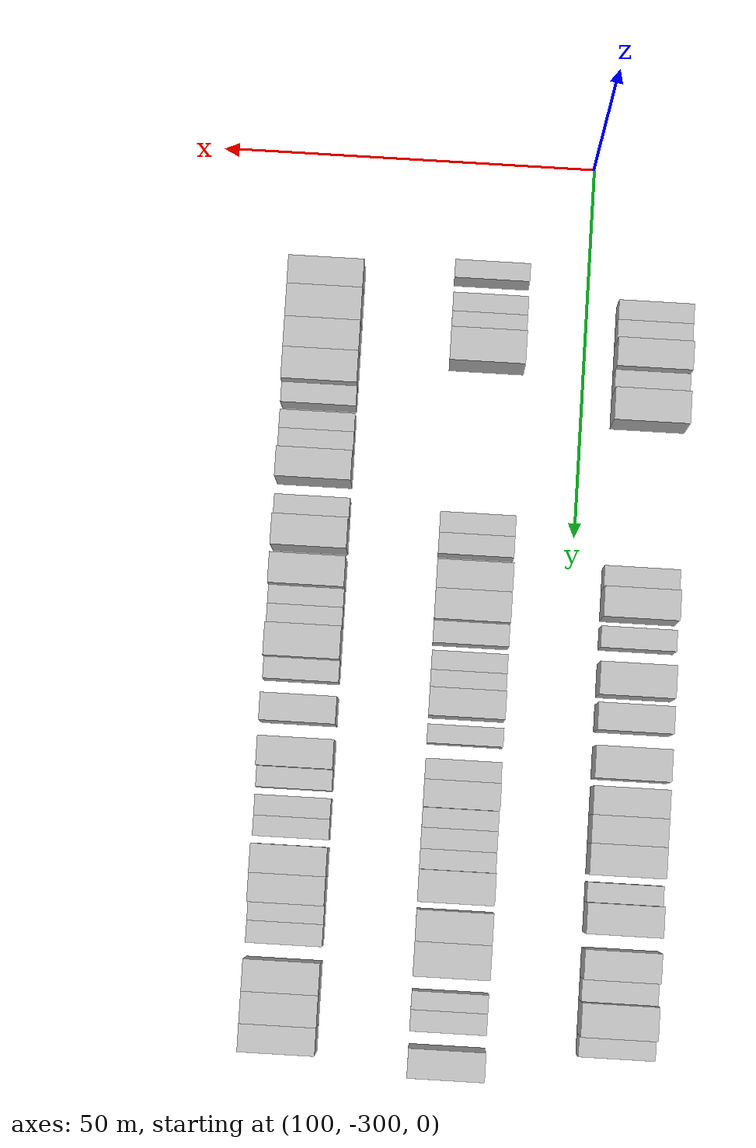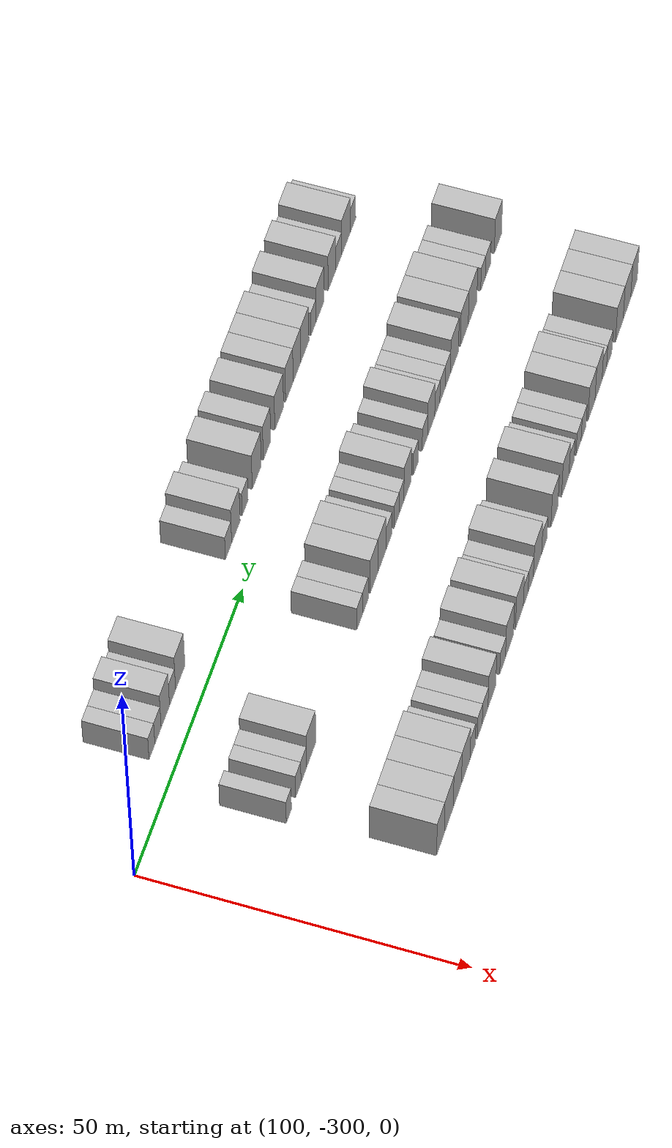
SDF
<sdf version="1.6">
 <world name="default">
  <model name="building_610">
   <static>1</static>
   <pose>91.0000 -280.1067 0 0.000000 0.000000 0.000000</pose>
   <link name="link">
    <pose>0 0 3.00 0 0 0</pose>
    <collision name="collision"><geometry><box><size>10.0000 2.6508 6.0000</size></box></geometry></collision>
    <visual name="visual">
     <cast_shadows>0</cast_shadows>
     <geometry><box><size>10.0000 2.6508 6.0000</size></box></geometry>
     <material>
      <script>
       <uri>model://HANNAS_wall/materials/scripts</uri>
       <uri>model://HANNAS_wall/materials/textures</uri>
       <name>vrc/HANNAS_wall</name>
      </script>
     </material>
    </visual>
   </link>
  </model>
  <model name="building_611">
   <static>1</static>
   <pose>91.0000 -277.3456 0 0.000000 0.000000 0.000000</pose>
   <link name="link">
    <pose>0 0 3.00 0 0 0</pose>
    <collision name="collision"><geometry><box><size>10.0000 2.8716 6.0000</size></box></geometry></collision>
    <visual name="visual">
     <cast_shadows>0</cast_shadows>
     <geometry><box><size>10.0000 2.8716 6.0000</size></box></geometry>
     <material>
      <script>
       <uri>model://HANNAS_wall/materials/scripts</uri>
       <uri>model://HANNAS_wall/materials/textures</uri>
       <name>vrc/HANNAS_wall</name>
      </script>
     </material>
    </visual>
   </link>
  </model>
  <model name="building_612">
   <static>1</static>
   <pose>91.0000 -273.9867 0 0.000000 0.000000 0.000000</pose>
   <link name="link">
    <pose>0 0 4.50 0 0 0</pose>
    <collision name="collision"><geometry><box><size>10.0000 3.8462 9.0000</size></box></geometry></collision>
    <visual name="visual">
     <cast_shadows>0</cast_shadows>
     <geometry><box><size>10.0000 3.8462 9.0000</size></box></geometry>
     <material>
      <script>
       <uri>model://HANNAS_wall/materials/scripts</uri>
       <uri>model://HANNAS_wall/materials/textures</uri>
       <name>vrc/HANNAS_wall</name>
      </script>
     </material>
    </visual>
   </link>
  </model>
  <model name="building_613">
   <static>1</static>
   <pose>91.0000 -270.6622 0 0.000000 0.000000 0.000000</pose>
   <link name="link">
    <pose>0 0 3.00 0 0 0</pose>
    <collision name="collision"><geometry><box><size>10.0000 2.8026 6.0000</size></box></geometry></collision>
    <visual name="visual">
     <cast_shadows>0</cast_shadows>
     <geometry><box><size>10.0000 2.8026 6.0000</size></box></geometry>
     <material>
      <script>
       <uri>model://HANNAS_wall/materials/scripts</uri>
       <uri>model://HANNAS_wall/materials/textures</uri>
       <name>vrc/HANNAS_wall</name>
      </script>
     </material>
    </visual>
   </link>
  </model>
  <model name="building_614">
   <static>1</static>
   <pose>91.0000 -267.1015 0 0.000000 0.000000 0.000000</pose>
   <link name="link">
    <pose>0 0 4.50 0 0 0</pose>
    <collision name="collision"><geometry><box><size>10.0000 4.3189 9.0000</size></box></geometry></collision>
    <visual name="visual">
     <cast_shadows>0</cast_shadows>
     <geometry><box><size>10.0000 4.3189 9.0000</size></box></geometry>
     <material>
      <script>
       <uri>model://HANNAS_wall/materials/scripts</uri>
       <uri>model://HANNAS_wall/materials/textures</uri>
       <name>vrc/HANNAS_wall</name>
      </script>
     </material>
    </visual>
   </link>
  </model>
  <model name="building_615">
   <static>1</static>
   <pose>91.0000 -244.4918 0 0.000000 0.000000 0.000000</pose>
   <link name="link">
    <pose>0 0 3.00 0 0 0</pose>
    <collision name="collision"><geometry><box><size>10.0000 2.9668 6.0000</size></box></geometry></collision>
    <visual name="visual">
     <cast_shadows>0</cast_shadows>
     <geometry><box><size>10.0000 2.9668 6.0000</size></box></geometry>
     <material>
      <script>
       <uri>model://HANNAS_wall/materials/scripts</uri>
       <uri>model://HANNAS_wall/materials/textures</uri>
       <name>vrc/HANNAS_wall</name>
      </script>
     </material>
    </visual>
   </link>
  </model>
  <model name="building_616">
   <static>1</static>
   <pose>91.0000 -240.9990 0 0.000000 0.000000 0.000000</pose>
   <link name="link">
    <pose>0 0 4.50 0 0 0</pose>
    <collision name="collision"><geometry><box><size>10.0000 4.0188 9.0000</size></box></geometry></collision>
    <visual name="visual">
     <cast_shadows>0</cast_shadows>
     <geometry><box><size>10.0000 4.0188 9.0000</size></box></geometry>
     <material>
      <script>
       <uri>model://HANNAS_wall/materials/scripts</uri>
       <uri>model://HANNAS_wall/materials/textures</uri>
       <name>vrc/HANNAS_wall</name>
      </script>
     </material>
    </visual>
   </link>
  </model>
  <model name="building_617">
   <static>1</static>
   <pose>91.0000 -236.5692 0 0.000000 0.000000 0.000000</pose>
   <link name="link">
    <pose>0 0 3.00 0 0 0</pose>
    <collision name="collision"><geometry><box><size>10.0000 2.8409 6.0000</size></box></geometry></collision>
    <visual name="visual">
     <cast_shadows>0</cast_shadows>
     <geometry><box><size>10.0000 2.8409 6.0000</size></box></geometry>
     <material>
      <script>
       <uri>model://HANNAS_wall/materials/scripts</uri>
       <uri>model://HANNAS_wall/materials/textures</uri>
       <name>vrc/HANNAS_wall</name>
      </script>
     </material>
    </visual>
   </link>
  </model>
  <model name="building_618">
   <static>1</static>
   <pose>91.0000 -230.9840 0 0.000000 0.000000 0.000000</pose>
   <link name="link">
    <pose>0 0 4.50 0 0 0</pose>
    <collision name="collision"><geometry><box><size>10.0000 4.3295 9.0000</size></box></geometry></collision>
    <visual name="visual">
     <cast_shadows>0</cast_shadows>
     <geometry><box><size>10.0000 4.3295 9.0000</size></box></geometry>
     <material>
      <script>
       <uri>model://HANNAS_wall/materials/scripts</uri>
       <uri>model://HANNAS_wall/materials/textures</uri>
       <name>vrc/HANNAS_wall</name>
      </script>
     </material>
    </visual>
   </link>
  </model>
  <model name="building_619">
   <static>1</static>
   <pose>91.0000 -226.0152 0 0.000000 0.000000 0.000000</pose>
   <link name="link">
    <pose>0 0 4.50 0 0 0</pose>
    <collision name="collision"><geometry><box><size>10.0000 3.6082 9.0000</size></box></geometry></collision>
    <visual name="visual">
     <cast_shadows>0</cast_shadows>
     <geometry><box><size>10.0000 3.6082 9.0000</size></box></geometry>
     <material>
      <script>
       <uri>model://HANNAS_wall/materials/scripts</uri>
       <uri>model://HANNAS_wall/materials/textures</uri>
       <name>vrc/HANNAS_wall</name>
      </script>
     </material>
    </visual>
   </link>
  </model>
  <model name="building_620">
   <static>1</static>
   <pose>91.0000 -220.0841 0 0.000000 0.000000 0.000000</pose>
   <link name="link">
    <pose>0 0 4.50 0 0 0</pose>
    <collision name="collision"><geometry><box><size>10.0000 4.2541 9.0000</size></box></geometry></collision>
    <visual name="visual">
     <cast_shadows>0</cast_shadows>
     <geometry><box><size>10.0000 4.2541 9.0000</size></box></geometry>
     <material>
      <script>
       <uri>model://HANNAS_wall/materials/scripts</uri>
       <uri>model://HANNAS_wall/materials/textures</uri>
       <name>vrc/HANNAS_wall</name>
      </script>
     </material>
    </visual>
   </link>
  </model>
  <model name="building_621">
   <static>1</static>
   <pose>91.0000 -215.0897 0 0.000000 0.000000 0.000000</pose>
   <link name="link">
    <pose>0 0 4.50 0 0 0</pose>
    <collision name="collision"><geometry><box><size>10.0000 3.7346 9.0000</size></box></geometry></collision>
    <visual name="visual">
     <cast_shadows>0</cast_shadows>
     <geometry><box><size>10.0000 3.7346 9.0000</size></box></geometry>
     <material>
      <script>
       <uri>model://HANNAS_wall/materials/scripts</uri>
       <uri>model://HANNAS_wall/materials/textures</uri>
       <name>vrc/HANNAS_wall</name>
      </script>
     </material>
    </visual>
   </link>
  </model>
  <model name="building_622">
   <static>1</static>
   <pose>91.0000 -211.3776 0 0.000000 0.000000 0.000000</pose>
   <link name="link">
    <pose>0 0 4.50 0 0 0</pose>
    <collision name="collision"><geometry><box><size>10.0000 3.6896 9.0000</size></box></geometry></collision>
    <visual name="visual">
     <cast_shadows>0</cast_shadows>
     <geometry><box><size>10.0000 3.6896 9.0000</size></box></geometry>
     <material>
      <script>
       <uri>model://HANNAS_wall/materials/scripts</uri>
       <uri>model://HANNAS_wall/materials/textures</uri>
       <name>vrc/HANNAS_wall</name>
      </script>
     </material>
    </visual>
   </link>
  </model>
  <model name="building_623">
   <static>1</static>
   <pose>91.0000 -207.4946 0 0.000000 0.000000 0.000000</pose>
   <link name="link">
    <pose>0 0 4.50 0 0 0</pose>
    <collision name="collision"><geometry><box><size>10.0000 4.0763 9.0000</size></box></geometry></collision>
    <visual name="visual">
     <cast_shadows>0</cast_shadows>
     <geometry><box><size>10.0000 4.0763 9.0000</size></box></geometry>
     <material>
      <script>
       <uri>model://HANNAS_wall/materials/scripts</uri>
       <uri>model://HANNAS_wall/materials/textures</uri>
       <name>vrc/HANNAS_wall</name>
      </script>
     </material>
    </visual>
   </link>
  </model>
  <model name="building_624">
   <static>1</static>
   <pose>91.0000 -203.1587 0 0.000000 0.000000 0.000000</pose>
   <link name="link">
    <pose>0 0 3.00 0 0 0</pose>
    <collision name="collision"><geometry><box><size>10.0000 2.5955 6.0000</size></box></geometry></collision>
    <visual name="visual">
     <cast_shadows>0</cast_shadows>
     <geometry><box><size>10.0000 2.5955 6.0000</size></box></geometry>
     <material>
      <script>
       <uri>model://HANNAS_wall/materials/scripts</uri>
       <uri>model://HANNAS_wall/materials/textures</uri>
       <name>vrc/HANNAS_wall</name>
      </script>
     </material>
    </visual>
   </link>
  </model>
  <model name="building_625">
   <static>1</static>
   <pose>91.0000 -199.8546 0 0.000000 0.000000 0.000000</pose>
   <link name="link">
    <pose>0 0 4.50 0 0 0</pose>
    <collision name="collision"><geometry><box><size>10.0000 4.0129 9.0000</size></box></geometry></collision>
    <visual name="visual">
     <cast_shadows>0</cast_shadows>
     <geometry><box><size>10.0000 4.0129 9.0000</size></box></geometry>
     <material>
      <script>
       <uri>model://HANNAS_wall/materials/scripts</uri>
       <uri>model://HANNAS_wall/materials/textures</uri>
       <name>vrc/HANNAS_wall</name>
      </script>
     </material>
    </visual>
   </link>
  </model>
  <model name="building_626">
   <static>1</static>
   <pose>91.0000 -193.9123 0 0.000000 0.000000 0.000000</pose>
   <link name="link">
    <pose>0 0 4.50 0 0 0</pose>
    <collision name="collision"><geometry><box><size>10.0000 3.8715 9.0000</size></box></geometry></collision>
    <visual name="visual">
     <cast_shadows>0</cast_shadows>
     <geometry><box><size>10.0000 3.8715 9.0000</size></box></geometry>
     <material>
      <script>
       <uri>model://HANNAS_wall/materials/scripts</uri>
       <uri>model://HANNAS_wall/materials/textures</uri>
       <name>vrc/HANNAS_wall</name>
      </script>
     </material>
    </visual>
   </link>
  </model>
  <model name="building_627">
   <static>1</static>
   <pose>91.0000 -190.4830 0 0.000000 0.000000 0.000000</pose>
   <link name="link">
    <pose>0 0 3.00 0 0 0</pose>
    <collision name="collision"><geometry><box><size>10.0000 2.9871 6.0000</size></box></geometry></collision>
    <visual name="visual">
     <cast_shadows>0</cast_shadows>
     <geometry><box><size>10.0000 2.9871 6.0000</size></box></geometry>
     <material>
      <script>
       <uri>model://HANNAS_wall/materials/scripts</uri>
       <uri>model://HANNAS_wall/materials/textures</uri>
       <name>vrc/HANNAS_wall</name>
      </script>
     </material>
    </visual>
   </link>
  </model>
  <model name="building_628">
   <static>1</static>
   <pose>91.0000 -186.7938 0 0.000000 0.000000 0.000000</pose>
   <link name="link">
    <pose>0 0 4.50 0 0 0</pose>
    <collision name="collision"><geometry><box><size>10.0000 4.3914 9.0000</size></box></geometry></collision>
    <visual name="visual">
     <cast_shadows>0</cast_shadows>
     <geometry><box><size>10.0000 4.3914 9.0000</size></box></geometry>
     <material>
      <script>
       <uri>model://HANNAS_wall/materials/scripts</uri>
       <uri>model://HANNAS_wall/materials/textures</uri>
       <name>vrc/HANNAS_wall</name>
      </script>
     </material>
    </visual>
   </link>
  </model>
  <model name="building_629">
   <static>1</static>
   <pose>91.0000 -183.2425 0 0.000000 0.000000 0.000000</pose>
   <link name="link">
    <pose>0 0 3.00 0 0 0</pose>
    <collision name="collision"><geometry><box><size>10.0000 2.7112 6.0000</size></box></geometry></collision>
    <visual name="visual">
     <cast_shadows>0</cast_shadows>
     <geometry><box><size>10.0000 2.7112 6.0000</size></box></geometry>
     <material>
      <script>
       <uri>model://HANNAS_wall/materials/scripts</uri>
       <uri>model://HANNAS_wall/materials/textures</uri>
       <name>vrc/HANNAS_wall</name>
      </script>
     </material>
    </visual>
   </link>
  </model>
  <model name="building_794">
   <static>1</static>
   <pose>113.0000 -284.3416 0 0.000000 0.000000 0.000000</pose>
   <link name="link">
    <pose>0 0 3.00 0 0 0</pose>
    <collision name="collision"><geometry><box><size>10.0000 2.4180 6.0000</size></box></geometry></collision>
    <visual name="visual">
     <cast_shadows>0</cast_shadows>
     <geometry><box><size>10.0000 2.4180 6.0000</size></box></geometry>
     <material>
      <script>
       <uri>model://HANNAS_wall/materials/scripts</uri>
       <uri>model://HANNAS_wall/materials/textures</uri>
       <name>vrc/HANNAS_wall</name>
      </script>
     </material>
    </visual>
   </link>
  </model>
  <model name="building_795">
   <static>1</static>
   <pose>113.0000 -279.8795 0 0.000000 0.000000 0.000000</pose>
   <link name="link">
    <pose>0 0 3.00 0 0 0</pose>
    <collision name="collision"><geometry><box><size>10.0000 2.5061 6.0000</size></box></geometry></collision>
    <visual name="visual">
     <cast_shadows>0</cast_shadows>
     <geometry><box><size>10.0000 2.5061 6.0000</size></box></geometry>
     <material>
      <script>
       <uri>model://HANNAS_wall/materials/scripts</uri>
       <uri>model://HANNAS_wall/materials/textures</uri>
       <name>vrc/HANNAS_wall</name>
      </script>
     </material>
    </visual>
   </link>
  </model>
  <model name="building_796">
   <static>1</static>
   <pose>113.0000 -277.3069 0 0.000000 0.000000 0.000000</pose>
   <link name="link">
    <pose>0 0 3.00 0 0 0</pose>
    <collision name="collision"><geometry><box><size>10.0000 2.6391 6.0000</size></box></geometry></collision>
    <visual name="visual">
     <cast_shadows>0</cast_shadows>
     <geometry><box><size>10.0000 2.6391 6.0000</size></box></geometry>
     <material>
      <script>
       <uri>model://HANNAS_wall/materials/scripts</uri>
       <uri>model://HANNAS_wall/materials/textures</uri>
       <name>vrc/HANNAS_wall</name>
      </script>
     </material>
    </visual>
   </link>
  </model>
  <model name="building_797">
   <static>1</static>
   <pose>113.0000 -273.7753 0 0.000000 0.000000 0.000000</pose>
   <link name="link">
    <pose>0 0 4.50 0 0 0</pose>
    <collision name="collision"><geometry><box><size>10.0000 4.4240 9.0000</size></box></geometry></collision>
    <visual name="visual">
     <cast_shadows>0</cast_shadows>
     <geometry><box><size>10.0000 4.4240 9.0000</size></box></geometry>
     <material>
      <script>
       <uri>model://HANNAS_wall/materials/scripts</uri>
       <uri>model://HANNAS_wall/materials/textures</uri>
       <name>vrc/HANNAS_wall</name>
      </script>
     </material>
    </visual>
   </link>
  </model>
  <model name="building_798">
   <static>1</static>
   <pose>113.0000 -250.4281 0 0.000000 0.000000 0.000000</pose>
   <link name="link">
    <pose>0 0 3.00 0 0 0</pose>
    <collision name="collision"><geometry><box><size>10.0000 2.7568 6.0000</size></box></geometry></collision>
    <visual name="visual">
     <cast_shadows>0</cast_shadows>
     <geometry><box><size>10.0000 2.7568 6.0000</size></box></geometry>
     <material>
      <script>
       <uri>model://HANNAS_wall/materials/scripts</uri>
       <uri>model://HANNAS_wall/materials/textures</uri>
       <name>vrc/HANNAS_wall</name>
      </script>
     </material>
    </visual>
   </link>
  </model>
  <model name="building_799">
   <static>1</static>
   <pose>113.0000 -247.6435 0 0.000000 0.000000 0.000000</pose>
   <link name="link">
    <pose>0 0 3.00 0 0 0</pose>
    <collision name="collision"><geometry><box><size>10.0000 2.8125 6.0000</size></box></geometry></collision>
    <visual name="visual">
     <cast_shadows>0</cast_shadows>
     <geometry><box><size>10.0000 2.8125 6.0000</size></box></geometry>
     <material>
      <script>
       <uri>model://HANNAS_wall/materials/scripts</uri>
       <uri>model://HANNAS_wall/materials/textures</uri>
       <name>vrc/HANNAS_wall</name>
      </script>
     </material>
    </visual>
   </link>
  </model>
  <model name="building_800">
   <static>1</static>
   <pose>113.0000 -243.3433 0 0.000000 0.000000 0.000000</pose>
   <link name="link">
    <pose>0 0 4.50 0 0 0</pose>
    <collision name="collision"><geometry><box><size>10.0000 3.7878 9.0000</size></box></geometry></collision>
    <visual name="visual">
     <cast_shadows>0</cast_shadows>
     <geometry><box><size>10.0000 3.7878 9.0000</size></box></geometry>
     <material>
      <script>
       <uri>model://HANNAS_wall/materials/scripts</uri>
       <uri>model://HANNAS_wall/materials/textures</uri>
       <name>vrc/HANNAS_wall</name>
      </script>
     </material>
    </visual>
   </link>
  </model>
  <model name="building_801">
   <static>1</static>
   <pose>113.0000 -239.4330 0 0.000000 0.000000 0.000000</pose>
   <link name="link">
    <pose>0 0 4.50 0 0 0</pose>
    <collision name="collision"><geometry><box><size>10.0000 4.0329 9.0000</size></box></geometry></collision>
    <visual name="visual">
     <cast_shadows>0</cast_shadows>
     <geometry><box><size>10.0000 4.0329 9.0000</size></box></geometry>
     <material>
      <script>
       <uri>model://HANNAS_wall/materials/scripts</uri>
       <uri>model://HANNAS_wall/materials/textures</uri>
       <name>vrc/HANNAS_wall</name>
      </script>
     </material>
    </visual>
   </link>
  </model>
  <model name="building_802">
   <static>1</static>
   <pose>113.0000 -235.9431 0 0.000000 0.000000 0.000000</pose>
   <link name="link">
    <pose>0 0 3.00 0 0 0</pose>
    <collision name="collision"><geometry><box><size>10.0000 2.9468 6.0000</size></box></geometry></collision>
    <visual name="visual">
     <cast_shadows>0</cast_shadows>
     <geometry><box><size>10.0000 2.9468 6.0000</size></box></geometry>
     <material>
      <script>
       <uri>model://HANNAS_wall/materials/scripts</uri>
       <uri>model://HANNAS_wall/materials/textures</uri>
       <name>vrc/HANNAS_wall</name>
      </script>
     </material>
    </visual>
   </link>
  </model>
  <model name="building_803">
   <static>1</static>
   <pose>113.0000 -232.2035 0 0.000000 0.000000 0.000000</pose>
   <link name="link">
    <pose>0 0 3.00 0 0 0</pose>
    <collision name="collision"><geometry><box><size>10.0000 2.5324 6.0000</size></box></geometry></collision>
    <visual name="visual">
     <cast_shadows>0</cast_shadows>
     <geometry><box><size>10.0000 2.5324 6.0000</size></box></geometry>
     <material>
      <script>
       <uri>model://HANNAS_wall/materials/scripts</uri>
       <uri>model://HANNAS_wall/materials/textures</uri>
       <name>vrc/HANNAS_wall</name>
      </script>
     </material>
    </visual>
   </link>
  </model>
  <model name="building_804">
   <static>1</static>
   <pose>113.0000 -229.7228 0 0.000000 0.000000 0.000000</pose>
   <link name="link">
    <pose>0 0 3.00 0 0 0</pose>
    <collision name="collision"><geometry><box><size>10.0000 2.4290 6.0000</size></box></geometry></collision>
    <visual name="visual">
     <cast_shadows>0</cast_shadows>
     <geometry><box><size>10.0000 2.4290 6.0000</size></box></geometry>
     <material>
      <script>
       <uri>model://HANNAS_wall/materials/scripts</uri>
       <uri>model://HANNAS_wall/materials/textures</uri>
       <name>vrc/HANNAS_wall</name>
      </script>
     </material>
    </visual>
   </link>
  </model>
  <model name="building_805">
   <static>1</static>
   <pose>113.0000 -226.6415 0 0.000000 0.000000 0.000000</pose>
   <link name="link">
    <pose>0 0 4.50 0 0 0</pose>
    <collision name="collision"><geometry><box><size>10.0000 3.7338 9.0000</size></box></geometry></collision>
    <visual name="visual">
     <cast_shadows>0</cast_shadows>
     <geometry><box><size>10.0000 3.7338 9.0000</size></box></geometry>
     <material>
      <script>
       <uri>model://HANNAS_wall/materials/scripts</uri>
       <uri>model://HANNAS_wall/materials/textures</uri>
       <name>vrc/HANNAS_wall</name>
      </script>
     </material>
    </visual>
   </link>
  </model>
  <model name="building_806">
   <static>1</static>
   <pose>113.0000 -222.5319 0 0.000000 0.000000 0.000000</pose>
   <link name="link">
    <pose>0 0 3.00 0 0 0</pose>
    <collision name="collision"><geometry><box><size>10.0000 2.4854 6.0000</size></box></geometry></collision>
    <visual name="visual">
     <cast_shadows>0</cast_shadows>
     <geometry><box><size>10.0000 2.4854 6.0000</size></box></geometry>
     <material>
      <script>
       <uri>model://HANNAS_wall/materials/scripts</uri>
       <uri>model://HANNAS_wall/materials/textures</uri>
       <name>vrc/HANNAS_wall</name>
      </script>
     </material>
    </visual>
   </link>
  </model>
  <model name="building_807">
   <static>1</static>
   <pose>113.0000 -217.9026 0 0.000000 0.000000 0.000000</pose>
   <link name="link">
    <pose>0 0 3.00 0 0 0</pose>
    <collision name="collision"><geometry><box><size>10.0000 2.7731 6.0000</size></box></geometry></collision>
    <visual name="visual">
     <cast_shadows>0</cast_shadows>
     <geometry><box><size>10.0000 2.7731 6.0000</size></box></geometry>
     <material>
      <script>
       <uri>model://HANNAS_wall/materials/scripts</uri>
       <uri>model://HANNAS_wall/materials/textures</uri>
       <name>vrc/HANNAS_wall</name>
      </script>
     </material>
    </visual>
   </link>
  </model>
  <model name="building_808">
   <static>1</static>
   <pose>113.0000 -214.7079 0 0.000000 0.000000 0.000000</pose>
   <link name="link">
    <pose>0 0 4.50 0 0 0</pose>
    <collision name="collision"><geometry><box><size>10.0000 3.6163 9.0000</size></box></geometry></collision>
    <visual name="visual">
     <cast_shadows>0</cast_shadows>
     <geometry><box><size>10.0000 3.6163 9.0000</size></box></geometry>
     <material>
      <script>
       <uri>model://HANNAS_wall/materials/scripts</uri>
       <uri>model://HANNAS_wall/materials/textures</uri>
       <name>vrc/HANNAS_wall</name>
      </script>
     </material>
    </visual>
   </link>
  </model>
  <model name="building_809">
   <static>1</static>
   <pose>113.0000 -211.5937 0 0.000000 0.000000 0.000000</pose>
   <link name="link">
    <pose>0 0 3.00 0 0 0</pose>
    <collision name="collision"><geometry><box><size>10.0000 2.6123 6.0000</size></box></geometry></collision>
    <visual name="visual">
     <cast_shadows>0</cast_shadows>
     <geometry><box><size>10.0000 2.6123 6.0000</size></box></geometry>
     <material>
      <script>
       <uri>model://HANNAS_wall/materials/scripts</uri>
       <uri>model://HANNAS_wall/materials/textures</uri>
       <name>vrc/HANNAS_wall</name>
      </script>
     </material>
    </visual>
   </link>
  </model>
  <model name="building_810">
   <static>1</static>
   <pose>113.0000 -208.9013 0 0.000000 0.000000 0.000000</pose>
   <link name="link">
    <pose>0 0 3.00 0 0 0</pose>
    <collision name="collision"><geometry><box><size>10.0000 2.7724 6.0000</size></box></geometry></collision>
    <visual name="visual">
     <cast_shadows>0</cast_shadows>
     <geometry><box><size>10.0000 2.7724 6.0000</size></box></geometry>
     <material>
      <script>
       <uri>model://HANNAS_wall/materials/scripts</uri>
       <uri>model://HANNAS_wall/materials/textures</uri>
       <name>vrc/HANNAS_wall</name>
      </script>
     </material>
    </visual>
   </link>
  </model>
  <model name="building_811">
   <static>1</static>
   <pose>113.0000 -206.1839 0 0.000000 0.000000 0.000000</pose>
   <link name="link">
    <pose>0 0 3.00 0 0 0</pose>
    <collision name="collision"><geometry><box><size>10.0000 2.6625 6.0000</size></box></geometry></collision>
    <visual name="visual">
     <cast_shadows>0</cast_shadows>
     <geometry><box><size>10.0000 2.6625 6.0000</size></box></geometry>
     <material>
      <script>
       <uri>model://HANNAS_wall/materials/scripts</uri>
       <uri>model://HANNAS_wall/materials/textures</uri>
       <name>vrc/HANNAS_wall</name>
      </script>
     </material>
    </visual>
   </link>
  </model>
  <model name="building_812">
   <static>1</static>
   <pose>113.0000 -202.7592 0 0.000000 0.000000 0.000000</pose>
   <link name="link">
    <pose>0 0 4.50 0 0 0</pose>
    <collision name="collision"><geometry><box><size>10.0000 4.1870 9.0000</size></box></geometry></collision>
    <visual name="visual">
     <cast_shadows>0</cast_shadows>
     <geometry><box><size>10.0000 4.1870 9.0000</size></box></geometry>
     <material>
      <script>
       <uri>model://HANNAS_wall/materials/scripts</uri>
       <uri>model://HANNAS_wall/materials/textures</uri>
       <name>vrc/HANNAS_wall</name>
      </script>
     </material>
    </visual>
   </link>
  </model>
  <model name="building_813">
   <static>1</static>
   <pose>113.0000 -197.6233 0 0.000000 0.000000 0.000000</pose>
   <link name="link">
    <pose>0 0 4.50 0 0 0</pose>
    <collision name="collision"><geometry><box><size>10.0000 4.0848 9.0000</size></box></geometry></collision>
    <visual name="visual">
     <cast_shadows>0</cast_shadows>
     <geometry><box><size>10.0000 4.0848 9.0000</size></box></geometry>
     <material>
      <script>
       <uri>model://HANNAS_wall/materials/scripts</uri>
       <uri>model://HANNAS_wall/materials/textures</uri>
       <name>vrc/HANNAS_wall</name>
      </script>
     </material>
    </visual>
   </link>
  </model>
  <model name="building_814">
   <static>1</static>
   <pose>113.0000 -193.3331 0 0.000000 0.000000 0.000000</pose>
   <link name="link">
    <pose>0 0 4.50 0 0 0</pose>
    <collision name="collision"><geometry><box><size>10.0000 4.4957 9.0000</size></box></geometry></collision>
    <visual name="visual">
     <cast_shadows>0</cast_shadows>
     <geometry><box><size>10.0000 4.4957 9.0000</size></box></geometry>
     <material>
      <script>
       <uri>model://HANNAS_wall/materials/scripts</uri>
       <uri>model://HANNAS_wall/materials/textures</uri>
       <name>vrc/HANNAS_wall</name>
      </script>
     </material>
    </visual>
   </link>
  </model>
  <model name="building_815">
   <static>1</static>
   <pose>113.0000 -187.8714 0 0.000000 0.000000 0.000000</pose>
   <link name="link">
    <pose>0 0 3.00 0 0 0</pose>
    <collision name="collision"><geometry><box><size>10.0000 2.4277 6.0000</size></box></geometry></collision>
    <visual name="visual">
     <cast_shadows>0</cast_shadows>
     <geometry><box><size>10.0000 2.4277 6.0000</size></box></geometry>
     <material>
      <script>
       <uri>model://HANNAS_wall/materials/scripts</uri>
       <uri>model://HANNAS_wall/materials/textures</uri>
       <name>vrc/HANNAS_wall</name>
      </script>
     </material>
    </visual>
   </link>
  </model>
  <model name="building_816">
   <static>1</static>
   <pose>113.0000 -185.2664 0 0.000000 0.000000 0.000000</pose>
   <link name="link">
    <pose>0 0 3.00 0 0 0</pose>
    <collision name="collision"><geometry><box><size>10.0000 2.7822 6.0000</size></box></geometry></collision>
    <visual name="visual">
     <cast_shadows>0</cast_shadows>
     <geometry><box><size>10.0000 2.7822 6.0000</size></box></geometry>
     <material>
      <script>
       <uri>model://HANNAS_wall/materials/scripts</uri>
       <uri>model://HANNAS_wall/materials/textures</uri>
       <name>vrc/HANNAS_wall</name>
      </script>
     </material>
    </visual>
   </link>
  </model>
  <model name="building_817">
   <static>1</static>
   <pose>113.0000 -179.9706 0 0.000000 0.000000 0.000000</pose>
   <link name="link">
    <pose>0 0 4.50 0 0 0</pose>
    <collision name="collision"><geometry><box><size>10.0000 3.8095 9.0000</size></box></geometry></collision>
    <visual name="visual">
     <cast_shadows>0</cast_shadows>
     <geometry><box><size>10.0000 3.8095 9.0000</size></box></geometry>
     <material>
      <script>
       <uri>model://HANNAS_wall/materials/scripts</uri>
       <uri>model://HANNAS_wall/materials/textures</uri>
       <name>vrc/HANNAS_wall</name>
      </script>
     </material>
    </visual>
   </link>
  </model>
  <model name="building_977">
   <static>1</static>
   <pose>135.0000 -282.3332 0 0.000000 0.000000 0.000000</pose>
   <link name="link">
    <pose>0 0 4.50 0 0 0</pose>
    <collision name="collision"><geometry><box><size>10.0000 3.7693 9.0000</size></box></geometry></collision>
    <visual name="visual">
     <cast_shadows>0</cast_shadows>
     <geometry><box><size>10.0000 3.7693 9.0000</size></box></geometry>
     <material>
      <script>
       <uri>model://HANNAS_wall/materials/scripts</uri>
       <uri>model://HANNAS_wall/materials/textures</uri>
       <name>vrc/HANNAS_wall</name>
      </script>
     </material>
    </visual>
   </link>
  </model>
  <model name="building_978">
   <static>1</static>
   <pose>135.0000 -278.2630 0 0.000000 0.000000 0.000000</pose>
   <link name="link">
    <pose>0 0 4.50 0 0 0</pose>
    <collision name="collision"><geometry><box><size>10.0000 4.3711 9.0000</size></box></geometry></collision>
    <visual name="visual">
     <cast_shadows>0</cast_shadows>
     <geometry><box><size>10.0000 4.3711 9.0000</size></box></geometry>
     <material>
      <script>
       <uri>model://HANNAS_wall/materials/scripts</uri>
       <uri>model://HANNAS_wall/materials/textures</uri>
       <name>vrc/HANNAS_wall</name>
      </script>
     </material>
    </visual>
   </link>
  </model>
  <model name="building_979">
   <static>1</static>
   <pose>135.0000 -274.0507 0 0.000000 0.000000 0.000000</pose>
   <link name="link">
    <pose>0 0 4.50 0 0 0</pose>
    <collision name="collision"><geometry><box><size>10.0000 4.0536 9.0000</size></box></geometry></collision>
    <visual name="visual">
     <cast_shadows>0</cast_shadows>
     <geometry><box><size>10.0000 4.0536 9.0000</size></box></geometry>
     <material>
      <script>
       <uri>model://HANNAS_wall/materials/scripts</uri>
       <uri>model://HANNAS_wall/materials/textures</uri>
       <name>vrc/HANNAS_wall</name>
      </script>
     </material>
    </visual>
   </link>
  </model>
  <model name="building_980">
   <static>1</static>
   <pose>135.0000 -269.9141 0 0.000000 0.000000 0.000000</pose>
   <link name="link">
    <pose>0 0 4.50 0 0 0</pose>
    <collision name="collision"><geometry><box><size>10.0000 4.2196 9.0000</size></box></geometry></collision>
    <visual name="visual">
     <cast_shadows>0</cast_shadows>
     <geometry><box><size>10.0000 4.2196 9.0000</size></box></geometry>
     <material>
      <script>
       <uri>model://HANNAS_wall/materials/scripts</uri>
       <uri>model://HANNAS_wall/materials/textures</uri>
       <name>vrc/HANNAS_wall</name>
      </script>
     </material>
    </visual>
   </link>
  </model>
  <model name="building_981">
   <static>1</static>
   <pose>135.0000 -266.4638 0 0.000000 0.000000 0.000000</pose>
   <link name="link">
    <pose>0 0 3.00 0 0 0</pose>
    <collision name="collision"><geometry><box><size>10.0000 2.6809 6.0000</size></box></geometry></collision>
    <visual name="visual">
     <cast_shadows>0</cast_shadows>
     <geometry><box><size>10.0000 2.6809 6.0000</size></box></geometry>
     <material>
      <script>
       <uri>model://HANNAS_wall/materials/scripts</uri>
       <uri>model://HANNAS_wall/materials/textures</uri>
       <name>vrc/HANNAS_wall</name>
      </script>
     </material>
    </visual>
   </link>
  </model>
  <model name="building_982">
   <static>1</static>
   <pose>135.0000 -262.8934 0 0.000000 0.000000 0.000000</pose>
   <link name="link">
    <pose>0 0 3.00 0 0 0</pose>
    <collision name="collision"><geometry><box><size>10.0000 2.4599 6.0000</size></box></geometry></collision>
    <visual name="visual">
     <cast_shadows>0</cast_shadows>
     <geometry><box><size>10.0000 2.4599 6.0000</size></box></geometry>
     <material>
      <script>
       <uri>model://HANNAS_wall/materials/scripts</uri>
       <uri>model://HANNAS_wall/materials/textures</uri>
       <name>vrc/HANNAS_wall</name>
      </script>
     </material>
    </visual>
   </link>
  </model>
  <model name="building_983">
   <static>1</static>
   <pose>135.0000 -260.2275 0 0.000000 0.000000 0.000000</pose>
   <link name="link">
    <pose>0 0 3.00 0 0 0</pose>
    <collision name="collision"><geometry><box><size>10.0000 2.8719 6.0000</size></box></geometry></collision>
    <visual name="visual">
     <cast_shadows>0</cast_shadows>
     <geometry><box><size>10.0000 2.8719 6.0000</size></box></geometry>
     <material>
      <script>
       <uri>model://HANNAS_wall/materials/scripts</uri>
       <uri>model://HANNAS_wall/materials/textures</uri>
       <name>vrc/HANNAS_wall</name>
      </script>
     </material>
    </visual>
   </link>
  </model>
  <model name="building_984">
   <static>1</static>
   <pose>135.0000 -256.8177 0 0.000000 0.000000 0.000000</pose>
   <link name="link">
    <pose>0 0 4.50 0 0 0</pose>
    <collision name="collision"><geometry><box><size>10.0000 3.9477 9.0000</size></box></geometry></collision>
    <visual name="visual">
     <cast_shadows>0</cast_shadows>
     <geometry><box><size>10.0000 3.9477 9.0000</size></box></geometry>
     <material>
      <script>
       <uri>model://HANNAS_wall/materials/scripts</uri>
       <uri>model://HANNAS_wall/materials/textures</uri>
       <name>vrc/HANNAS_wall</name>
      </script>
     </material>
    </visual>
   </link>
  </model>
  <model name="building_985">
   <static>1</static>
   <pose>135.0000 -251.3903 0 0.000000 0.000000 0.000000</pose>
   <link name="link">
    <pose>0 0 3.00 0 0 0</pose>
    <collision name="collision"><geometry><box><size>10.0000 2.9071 6.0000</size></box></geometry></collision>
    <visual name="visual">
     <cast_shadows>0</cast_shadows>
     <geometry><box><size>10.0000 2.9071 6.0000</size></box></geometry>
     <material>
      <script>
       <uri>model://HANNAS_wall/materials/scripts</uri>
       <uri>model://HANNAS_wall/materials/textures</uri>
       <name>vrc/HANNAS_wall</name>
      </script>
     </material>
    </visual>
   </link>
  </model>
  <model name="building_986">
   <static>1</static>
   <pose>135.0000 -247.8920 0 0.000000 0.000000 0.000000</pose>
   <link name="link">
    <pose>0 0 4.50 0 0 0</pose>
    <collision name="collision"><geometry><box><size>10.0000 4.0895 9.0000</size></box></geometry></collision>
    <visual name="visual">
     <cast_shadows>0</cast_shadows>
     <geometry><box><size>10.0000 4.0895 9.0000</size></box></geometry>
     <material>
      <script>
       <uri>model://HANNAS_wall/materials/scripts</uri>
       <uri>model://HANNAS_wall/materials/textures</uri>
       <name>vrc/HANNAS_wall</name>
      </script>
     </material>
    </visual>
   </link>
  </model>
  <model name="building_987">
   <static>1</static>
   <pose>135.0000 -242.8274 0 0.000000 0.000000 0.000000</pose>
   <link name="link">
    <pose>0 0 4.50 0 0 0</pose>
    <collision name="collision"><geometry><box><size>10.0000 4.0397 9.0000</size></box></geometry></collision>
    <visual name="visual">
     <cast_shadows>0</cast_shadows>
     <geometry><box><size>10.0000 4.0397 9.0000</size></box></geometry>
     <material>
      <script>
       <uri>model://HANNAS_wall/materials/scripts</uri>
       <uri>model://HANNAS_wall/materials/textures</uri>
       <name>vrc/HANNAS_wall</name>
      </script>
     </material>
    </visual>
   </link>
  </model>
  <model name="building_988">
   <static>1</static>
   <pose>135.0000 -239.5767 0 0.000000 0.000000 0.000000</pose>
   <link name="link">
    <pose>0 0 3.00 0 0 0</pose>
    <collision name="collision"><geometry><box><size>10.0000 2.4618 6.0000</size></box></geometry></collision>
    <visual name="visual">
     <cast_shadows>0</cast_shadows>
     <geometry><box><size>10.0000 2.4618 6.0000</size></box></geometry>
     <material>
      <script>
       <uri>model://HANNAS_wall/materials/scripts</uri>
       <uri>model://HANNAS_wall/materials/textures</uri>
       <name>vrc/HANNAS_wall</name>
      </script>
     </material>
    </visual>
   </link>
  </model>
  <model name="building_989">
   <static>1</static>
   <pose>135.0000 -237.0096 0 0.000000 0.000000 0.000000</pose>
   <link name="link">
    <pose>0 0 3.00 0 0 0</pose>
    <collision name="collision"><geometry><box><size>10.0000 2.6724 6.0000</size></box></geometry></collision>
    <visual name="visual">
     <cast_shadows>0</cast_shadows>
     <geometry><box><size>10.0000 2.6724 6.0000</size></box></geometry>
     <material>
      <script>
       <uri>model://HANNAS_wall/materials/scripts</uri>
       <uri>model://HANNAS_wall/materials/textures</uri>
       <name>vrc/HANNAS_wall</name>
      </script>
     </material>
    </visual>
   </link>
  </model>
  <model name="building_990">
   <static>1</static>
   <pose>135.0000 -233.4989 0 0.000000 0.000000 0.000000</pose>
   <link name="link">
    <pose>0 0 4.50 0 0 0</pose>
    <collision name="collision"><geometry><box><size>10.0000 4.3491 9.0000</size></box></geometry></collision>
    <visual name="visual">
     <cast_shadows>0</cast_shadows>
     <geometry><box><size>10.0000 4.3491 9.0000</size></box></geometry>
     <material>
      <script>
       <uri>model://HANNAS_wall/materials/scripts</uri>
       <uri>model://HANNAS_wall/materials/textures</uri>
       <name>vrc/HANNAS_wall</name>
      </script>
     </material>
    </visual>
   </link>
  </model>
  <model name="building_991">
   <static>1</static>
   <pose>135.0000 -229.9022 0 0.000000 0.000000 0.000000</pose>
   <link name="link">
    <pose>0 0 3.00 0 0 0</pose>
    <collision name="collision"><geometry><box><size>10.0000 2.8443 6.0000</size></box></geometry></collision>
    <visual name="visual">
     <cast_shadows>0</cast_shadows>
     <geometry><box><size>10.0000 2.8443 6.0000</size></box></geometry>
     <material>
      <script>
       <uri>model://HANNAS_wall/materials/scripts</uri>
       <uri>model://HANNAS_wall/materials/textures</uri>
       <name>vrc/HANNAS_wall</name>
      </script>
     </material>
    </visual>
   </link>
  </model>
  <model name="building_992">
   <static>1</static>
   <pose>135.0000 -224.6740 0 0.000000 0.000000 0.000000</pose>
   <link name="link">
    <pose>0 0 4.50 0 0 0</pose>
    <collision name="collision"><geometry><box><size>10.0000 3.6120 9.0000</size></box></geometry></collision>
    <visual name="visual">
     <cast_shadows>0</cast_shadows>
     <geometry><box><size>10.0000 3.6120 9.0000</size></box></geometry>
     <material>
      <script>
       <uri>model://HANNAS_wall/materials/scripts</uri>
       <uri>model://HANNAS_wall/materials/textures</uri>
       <name>vrc/HANNAS_wall</name>
      </script>
     </material>
    </visual>
   </link>
  </model>
  <model name="building_993">
   <static>1</static>
   <pose>135.0000 -218.9322 0 0.000000 0.000000 0.000000</pose>
   <link name="link">
    <pose>0 0 4.50 0 0 0</pose>
    <collision name="collision"><geometry><box><size>10.0000 3.8716 9.0000</size></box></geometry></collision>
    <visual name="visual">
     <cast_shadows>0</cast_shadows>
     <geometry><box><size>10.0000 3.8716 9.0000</size></box></geometry>
     <material>
      <script>
       <uri>model://HANNAS_wall/materials/scripts</uri>
       <uri>model://HANNAS_wall/materials/textures</uri>
       <name>vrc/HANNAS_wall</name>
      </script>
     </material>
    </visual>
   </link>
  </model>
  <model name="building_994">
   <static>1</static>
   <pose>135.0000 -215.6249 0 0.000000 0.000000 0.000000</pose>
   <link name="link">
    <pose>0 0 3.00 0 0 0</pose>
    <collision name="collision"><geometry><box><size>10.0000 2.7431 6.0000</size></box></geometry></collision>
    <visual name="visual">
     <cast_shadows>0</cast_shadows>
     <geometry><box><size>10.0000 2.7431 6.0000</size></box></geometry>
     <material>
      <script>
       <uri>model://HANNAS_wall/materials/scripts</uri>
       <uri>model://HANNAS_wall/materials/textures</uri>
       <name>vrc/HANNAS_wall</name>
      </script>
     </material>
    </visual>
   </link>
  </model>
  <model name="building_995">
   <static>1</static>
   <pose>135.0000 -211.9066 0 0.000000 0.000000 0.000000</pose>
   <link name="link">
    <pose>0 0 3.00 0 0 0</pose>
    <collision name="collision"><geometry><box><size>10.0000 2.6936 6.0000</size></box></geometry></collision>
    <visual name="visual">
     <cast_shadows>0</cast_shadows>
     <geometry><box><size>10.0000 2.6936 6.0000</size></box></geometry>
     <material>
      <script>
       <uri>model://HANNAS_wall/materials/scripts</uri>
       <uri>model://HANNAS_wall/materials/textures</uri>
       <name>vrc/HANNAS_wall</name>
      </script>
     </material>
    </visual>
   </link>
  </model>
  <model name="building_996">
   <static>1</static>
   <pose>135.0000 -209.2186 0 0.000000 0.000000 0.000000</pose>
   <link name="link">
    <pose>0 0 3.00 0 0 0</pose>
    <collision name="collision"><geometry><box><size>10.0000 2.6824 6.0000</size></box></geometry></collision>
    <visual name="visual">
     <cast_shadows>0</cast_shadows>
     <geometry><box><size>10.0000 2.6824 6.0000</size></box></geometry>
     <material>
      <script>
       <uri>model://HANNAS_wall/materials/scripts</uri>
       <uri>model://HANNAS_wall/materials/textures</uri>
       <name>vrc/HANNAS_wall</name>
      </script>
     </material>
    </visual>
   </link>
  </model>
  <model name="building_997">
   <static>1</static>
   <pose>135.0000 -204.9961 0 0.000000 0.000000 0.000000</pose>
   <link name="link">
    <pose>0 0 4.50 0 0 0</pose>
    <collision name="collision"><geometry><box><size>10.0000 3.7626 9.0000</size></box></geometry></collision>
    <visual name="visual">
     <cast_shadows>0</cast_shadows>
     <geometry><box><size>10.0000 3.7626 9.0000</size></box></geometry>
     <material>
      <script>
       <uri>model://HANNAS_wall/materials/scripts</uri>
       <uri>model://HANNAS_wall/materials/textures</uri>
       <name>vrc/HANNAS_wall</name>
      </script>
     </material>
    </visual>
   </link>
  </model>
  <model name="building_998">
   <static>1</static>
   <pose>135.0000 -201.2305 0 0.000000 0.000000 0.000000</pose>
   <link name="link">
    <pose>0 0 4.50 0 0 0</pose>
    <collision name="collision"><geometry><box><size>10.0000 3.7685 9.0000</size></box></geometry></collision>
    <visual name="visual">
     <cast_shadows>0</cast_shadows>
     <geometry><box><size>10.0000 3.7685 9.0000</size></box></geometry>
     <material>
      <script>
       <uri>model://HANNAS_wall/materials/scripts</uri>
       <uri>model://HANNAS_wall/materials/textures</uri>
       <name>vrc/HANNAS_wall</name>
      </script>
     </material>
    </visual>
   </link>
  </model>
  <model name="building_999">
   <static>1</static>
   <pose>135.0000 -198.1159 0 0.000000 0.000000 0.000000</pose>
   <link name="link">
    <pose>0 0 3.00 0 0 0</pose>
    <collision name="collision"><geometry><box><size>10.0000 2.4606 6.0000</size></box></geometry></collision>
    <visual name="visual">
     <cast_shadows>0</cast_shadows>
     <geometry><box><size>10.0000 2.4606 6.0000</size></box></geometry>
     <material>
      <script>
       <uri>model://HANNAS_wall/materials/scripts</uri>
       <uri>model://HANNAS_wall/materials/textures</uri>
       <name>vrc/HANNAS_wall</name>
      </script>
     </material>
    </visual>
   </link>
  </model>
  <model name="building_1000">
   <static>1</static>
   <pose>135.0000 -195.4424 0 0.000000 0.000000 0.000000</pose>
   <link name="link">
    <pose>0 0 3.00 0 0 0</pose>
    <collision name="collision"><geometry><box><size>10.0000 2.8865 6.0000</size></box></geometry></collision>
    <visual name="visual">
     <cast_shadows>0</cast_shadows>
     <geometry><box><size>10.0000 2.8865 6.0000</size></box></geometry>
     <material>
      <script>
       <uri>model://HANNAS_wall/materials/scripts</uri>
       <uri>model://HANNAS_wall/materials/textures</uri>
       <name>vrc/HANNAS_wall</name>
      </script>
     </material>
    </visual>
   </link>
  </model>
  <model name="building_1001">
   <static>1</static>
   <pose>135.0000 -189.9252 0 0.000000 0.000000 0.000000</pose>
   <link name="link">
    <pose>0 0 4.50 0 0 0</pose>
    <collision name="collision"><geometry><box><size>10.0000 4.1478 9.0000</size></box></geometry></collision>
    <visual name="visual">
     <cast_shadows>0</cast_shadows>
     <geometry><box><size>10.0000 4.1478 9.0000</size></box></geometry>
     <material>
      <script>
       <uri>model://HANNAS_wall/materials/scripts</uri>
       <uri>model://HANNAS_wall/materials/textures</uri>
       <name>vrc/HANNAS_wall</name>
      </script>
     </material>
    </visual>
   </link>
  </model>
  <model name="building_1002">
   <static>1</static>
   <pose>135.0000 -185.7844 0 0.000000 0.000000 0.000000</pose>
   <link name="link">
    <pose>0 0 4.50 0 0 0</pose>
    <collision name="collision"><geometry><box><size>10.0000 4.1339 9.0000</size></box></geometry></collision>
    <visual name="visual">
     <cast_shadows>0</cast_shadows>
     <geometry><box><size>10.0000 4.1339 9.0000</size></box></geometry>
     <material>
      <script>
       <uri>model://HANNAS_wall/materials/scripts</uri>
       <uri>model://HANNAS_wall/materials/textures</uri>
       <name>vrc/HANNAS_wall</name>
      </script>
     </material>
    </visual>
   </link>
  </model>
  <model name="building_1003">
   <static>1</static>
   <pose>135.0000 -181.9148 0 0.000000 0.000000 0.000000</pose>
   <link name="link">
    <pose>0 0 4.50 0 0 0</pose>
    <collision name="collision"><geometry><box><size>10.0000 3.6051 9.0000</size></box></geometry></collision>
    <visual name="visual">
     <cast_shadows>0</cast_shadows>
     <geometry><box><size>10.0000 3.6051 9.0000</size></box></geometry>
     <material>
      <script>
       <uri>model://HANNAS_wall/materials/scripts</uri>
       <uri>model://HANNAS_wall/materials/textures</uri>
       <name>vrc/HANNAS_wall</name>
      </script>
     </material>
    </visual>
   </link>
  </model>
 </world>
</sdf>
